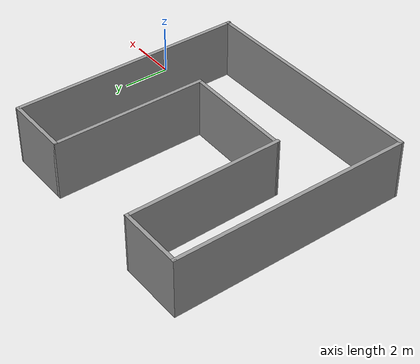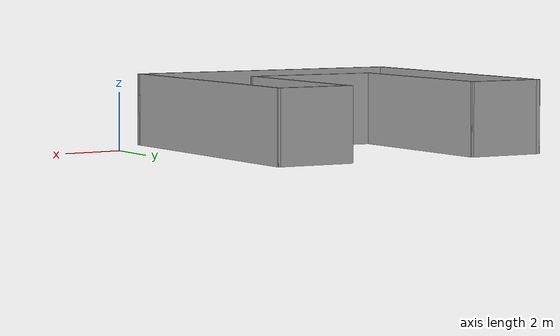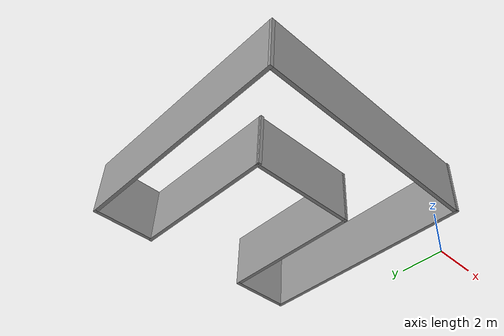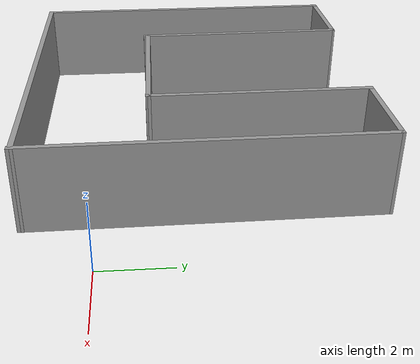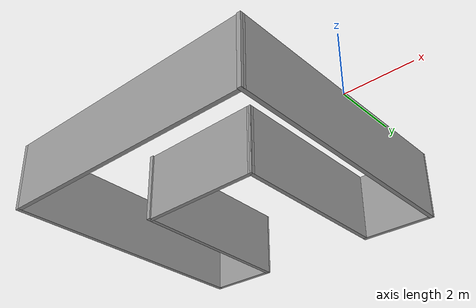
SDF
<?xml version='1.0'?>
<sdf version='1.7'>
  <model name='mybuildig'>
    <pose>-5.87444 2.99202 0 0 -0 0</pose>
    <link name='Wall_24'>
      <collision name='Wall_24_Collision'>
        <geometry>
          <box>
            <size>2.75 0.15 2.5</size>
          </box>
        </geometry>
        <pose>0 0 1.25 0 -0 0</pose>
      </collision>
      <visual name='Wall_24_Visual'>
        <pose>0 0 1.25 0 -0 0</pose>
        <geometry>
          <box>
            <size>2.75 0.15 2.5</size>
          </box>
        </geometry>
        <material>
          <script>
            <uri>file://media/materials/scripts/gazebo.material</uri>
            <name>Gazebo/Grey</name>
          </script>
          <ambient>1 1 1 1</ambient>
        </material>
        <meta>
          <layer>0</layer>
        </meta>
      </visual>
      <pose>-4.49942 4.94198 0 0 -0 0</pose>
    </link>
    <link name='Wall_25'>
      <collision name='Wall_25_Collision'>
        <geometry>
          <box>
            <size>6.5721 0.15 2.5</size>
          </box>
        </geometry>
        <pose>0 0 1.25 0 -0 0</pose>
      </collision>
      <visual name='Wall_25_Visual'>
        <pose>0 0 1.25 0 -0 0</pose>
        <geometry>
          <box>
            <size>6.5721 0.15 2.5</size>
          </box>
        </geometry>
        <material>
          <script>
            <uri>file://media/materials/scripts/gazebo.material</uri>
            <name>Gazebo/Grey</name>
          </script>
          <ambient>1 1 1 1</ambient>
        </material>
        <meta>
          <layer>0</layer>
        </meta>
      </visual>
      <pose>-3.16082 1.73116 0 0 -0 -1.55878</pose>
    </link>
    <link name='Wall_26'>
      <collision name='Wall_26_Collision'>
        <geometry>
          <box>
            <size>4.75639 0.15 2.5</size>
          </box>
        </geometry>
        <pose>0 0 1.25 0 -0 0</pose>
      </collision>
      <visual name='Wall_26_Visual'>
        <pose>0 0 1.25 0 -0 0</pose>
        <geometry>
          <box>
            <size>4.75639 0.15 2.5</size>
          </box>
        </geometry>
        <material>
          <script>
            <uri>file://media/materials/scripts/gazebo.material</uri>
            <name>Gazebo/Grey</name>
          </script>
          <ambient>1 1 1 1</ambient>
        </material>
        <meta>
          <layer>0</layer>
        </meta>
      </visual>
      <pose>-0.819854 -1.46145 0 0 -0 -0.01976</pose>
    </link>
    <link name='Wall_27'>
      <collision name='Wall_27_Collision'>
        <geometry>
          <box>
            <size>6.5 0.15 2.5</size>
          </box>
        </geometry>
        <pose>0 0 1.25 0 -0 0</pose>
      </collision>
      <visual name='Wall_27_Visual'>
        <pose>0 0 1.25 0 -0 0</pose>
        <geometry>
          <box>
            <size>6.5 0.15 2.5</size>
          </box>
        </geometry>
        <material>
          <script>
            <uri>file://media/materials/scripts/gazebo.material</uri>
            <name>Gazebo/Grey</name>
          </script>
          <ambient>1 1 1 1</ambient>
        </material>
        <meta>
          <layer>0</layer>
        </meta>
      </visual>
      <pose>1.48252 1.66805 0 0 -0 1.5708</pose>
    </link>
    <link name='Wall_28'>
      <collision name='Wall_28_Collision'>
        <geometry>
          <box>
            <size>2.75486 0.15 2.5</size>
          </box>
        </geometry>
        <pose>0 0 1.25 0 -0 0</pose>
      </collision>
      <visual name='Wall_28_Visual'>
        <pose>0 0 1.25 0 -0 0</pose>
        <geometry>
          <box>
            <size>2.75486 0.15 2.5</size>
          </box>
        </geometry>
        <material>
          <script>
            <uri>file://media/materials/scripts/gazebo.material</uri>
            <name>Gazebo/Grey</name>
          </script>
          <ambient>1 1 1 1</ambient>
        </material>
        <meta>
          <layer>0</layer>
        </meta>
      </visual>
      <pose>2.78495 4.84305 0 0 -0 0</pose>
    </link>
    <link name='Wall_29'>
      <collision name='Wall_29_Collision'>
        <geometry>
          <box>
            <size>9.93581 0.15 2.5</size>
          </box>
        </geometry>
        <pose>0 0 1.25 0 -0 0</pose>
      </collision>
      <visual name='Wall_29_Visual'>
        <pose>0 0 1.25 0 -0 0</pose>
        <geometry>
          <box>
            <size>9.93581 0.15 2.5</size>
          </box>
        </geometry>
        <material>
          <script>
            <uri>file://media/materials/scripts/gazebo.material</uri>
            <name>Gazebo/Grey</name>
          </script>
          <ambient>1 1 1 1</ambient>
        </material>
        <meta>
          <layer>0</layer>
        </meta>
      </visual>
      <pose>4.09634 -0.049842 0 0 -0 -1.56896</pose>
    </link>
    <link name='Wall_30'>
      <collision name='Wall_30_Collision'>
        <geometry>
          <box>
            <size>10.0547 0.15 2.5</size>
          </box>
        </geometry>
        <pose>0 0 1.25 0 -0 0</pose>
      </collision>
      <visual name='Wall_30_Visual'>
        <pose>0 0 1.25 0 -0 0</pose>
        <geometry>
          <box>
            <size>10.0547 0.15 2.5</size>
          </box>
        </geometry>
        <material>
          <script>
            <uri>file://media/materials/scripts/gazebo.material</uri>
            <name>Gazebo/Grey</name>
          </script>
          <ambient>1 1 1 1</ambient>
        </material>
        <meta>
          <layer>0</layer>
        </meta>
      </visual>
      <pose>-0.847061 -4.90945 0 0 -0 3.1413</pose>
    </link>
    <link name='Wall_31'>
      <collision name='Wall_31_Collision'>
        <geometry>
          <box>
            <size>10 0.15 2.5</size>
          </box>
        </geometry>
        <pose>0 0 1.25 0 -0 0</pose>
      </collision>
      <visual name='Wall_31_Visual'>
        <pose>0 0 1.25 0 -0 0</pose>
        <geometry>
          <box>
            <size>10 0.15 2.5</size>
          </box>
        </geometry>
        <material>
          <script>
            <uri>file://media/materials/scripts/gazebo.material</uri>
            <name>Gazebo/Grey</name>
          </script>
          <ambient>1 1 1 1</ambient>
        </material>
        <meta>
          <layer>0</layer>
        </meta>
      </visual>
      <pose>-5.79942 0.016979 0 0 -0 1.5708</pose>
    </link>
    <static>1</static>
  </model>
</sdf>
